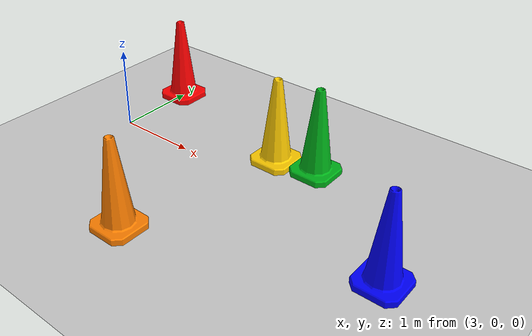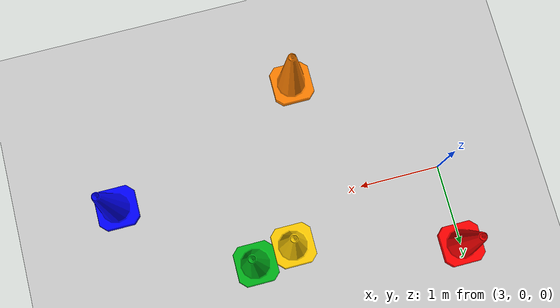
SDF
<?xml version="1.0" ?>
<sdf version="1.8">
    <world name="test_world">
        <!-- IIITDM Kancheepuram Campus -->
        <spherical_coordinates>
        <surface_model>EARTH_WGS84</surface_model>
        <latitude_deg>12.8378</latitude_deg>
        <longitude_deg>80.1371</longitude_deg>
        <elevation>35.0</elevation>
        <heading_deg>0</heading_deg>
        </spherical_coordinates>
            <!-- 1. THE CORE GAZEBO PLUGINS (These make the world actually render and work) -->
        <plugin filename="gz-sim-physics-system" name="gz::sim::systems::Physics"/>
        <plugin filename="gz-sim-scene-broadcaster-system" name="gz::sim::systems::SceneBroadcaster"/>
        <plugin filename="gz-sim-user-commands-system" name="gz::sim::systems::UserCommands"/>

        <!-- 2. THE SENSOR PLUGIN (This makes the LiDAR work) -->
        <plugin filename="gz-sim-sensors-system" name="gz::sim::systems::Sensors">
            <render_engine>ogre2</render_engine>
        </plugin>

        <physics name="1ms" type="ignored">
            <max_step_size>0.001</max_step_size>
            <real_time_factor>1.0</real_time_factor>
        </physics>

        <!-- 3. ENVIRONMENT -->
        <light type="directional" name="sun">
            <cast_shadows>true</cast_shadows>
            <pose>0 0 10 0 0 0</pose>
            <diffuse>0.8 0.8 0.8 1</diffuse>
            <specular>0.2 0.2 0.2 1</specular>
            <attenuation>
                <range>1000</range>
                <constant>0.9</constant>
                <linear>0.01</linear>
                <quadratic>0.001</quadratic>
            </attenuation>
            <direction>-0.5 0.1 -0.9</direction>
        </light>

        <model name="ground_plane">
            <static>true</static>
            <link name="link">
                <collision name="collision">
                    <geometry>
                        <plane>
                            <normal>0 0 1</normal>
                            <size>100 100</size>
                        </plane>
                    </geometry>
                </collision>
                <visual name="visual">
                    <geometry>
                        <plane>
                            <normal>0 0 1</normal>
                            <size>100 100</size>
                        </plane>
                    </geometry>
                    <material>
                        <ambient>0.8 0.8 0.8 1</ambient>
                        <diffuse>0.8 0.8 0.8 1</diffuse>
                        <specular>0.8 0.8 0.8 1</specular>
                    </material>
                </visual>
            </link>
        </model>

        <!-- 4. YOUR CONES (With collisions intact) -->
        <model name="red_cone">
            <pose>3.0 1.0 0.0 0 0 0</pose>
            <static>true</static>
            <link name="link">
                <visual name="visual">
                    <geometry>
                        <mesh>
                            <uri>file:///home/taper/ros2_ws/src/task3-5/robotsim/worlds/base_cone.dae</uri>
                            <scale>10.0 10.0 10.0</scale>
                        </mesh>
                    </geometry>
                    <material><ambient>1 0 0 1</ambient><diffuse>1 0 0 1</diffuse></material>
                </visual>
                <collision name="collision">
                    <geometry><cylinder><radius>0.15</radius><length>0.4</length></cylinder></geometry>
                </collision>
            </link>
        </model>

        <model name="green_cone">
            <pose>5.5 0.6 0.0 0 0 0</pose>
            <static>true</static>
            <link name="link">
                <visual name="visual">
                    <geometry>
                        <mesh>
                            <uri>file:///home/taper/ros2_ws/src/task3-5/robotsim/worlds/base_cone.dae</uri>
                            <scale>10.0 10.0 10.0</scale>
                        </mesh>
                    </geometry>
                    <material><ambient>0.0 0.7 0.1 1</ambient><diffuse>0.0 0.7 0.1 1</diffuse></material>
                </visual>
                <collision name="collision">
                    <geometry><cylinder><radius>0.15</radius><length>0.4</length></cylinder></geometry>
                </collision>
            </link>
        </model>

        <model name="blue_cone">
            <pose>7.0 -0.5 0.0 0 0 0</pose>
            <static>true</static>
            <link name="link">
                <visual name="visual">
                    <geometry>
                        <mesh>
                            <uri>file:///home/taper/ros2_ws/src/task3-5/robotsim/worlds/base_cone.dae</uri>
                            <scale>10.0 10.0 10.0</scale>
                        </mesh>
                    </geometry>
                    <material><ambient>0 0 1 1</ambient><diffuse>0 0 1 1</diffuse></material>
                </visual>
                <collision name="collision">
                    <geometry><cylinder><radius>0.15</radius><length>0.4</length></cylinder></geometry>
                </collision>
            </link>
        </model>

        <model name="yellow_cone">
            <pose>5.0 0.5 0.0 0 0 0</pose>
            <static>true</static>
            <link name="link">
                <visual name="visual">
                    <geometry>
                        <mesh>
                            <uri>file:///home/taper/ros2_ws/src/task3-5/robotsim/worlds/base_cone.dae</uri>
                            <scale>10.0 10.0 10.0</scale>
                        </mesh>
                    </geometry>
                    <material><ambient>1.0 0.8 0.0 1</ambient><diffuse>1.0 0.8 0.0 1</diffuse></material>
                </visual>
                <collision name="collision">
                    <geometry><cylinder><radius>0.15</radius><length>0.4</length></cylinder></geometry>
                </collision>
            </link>
        </model>

        <model name="orange_cone">
            <pose>4.5 -1.5 0.0 0 0 0</pose>
            <static>true</static>
            <link name="link">
                <visual name="visual">
                    <geometry>
                        <mesh>
                            <uri>file:///home/taper/ros2_ws/src/task3-5/robotsim/worlds/base_cone.dae</uri>
                            <scale>10.0 10.0 10.0</scale>
                        </mesh>
                    </geometry>
                    <material><ambient>1 0.5 0 1</ambient><diffuse>1 0.5 0 1</diffuse></material>
                </visual>
                <collision name="collision">
                    <geometry><cylinder><radius>0.15</radius><length>0.4</length></cylinder></geometry>
                </collision>
            </link>
        </model>
    </world>
</sdf>
